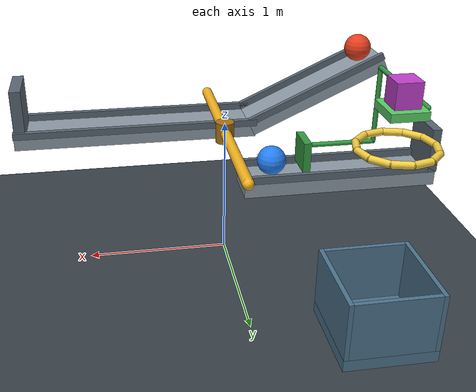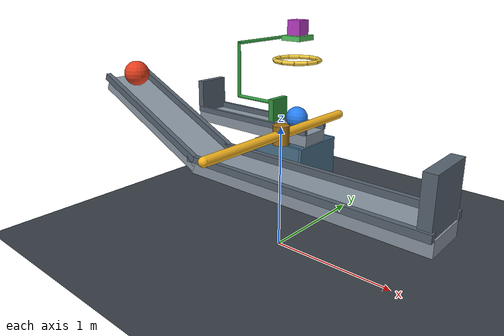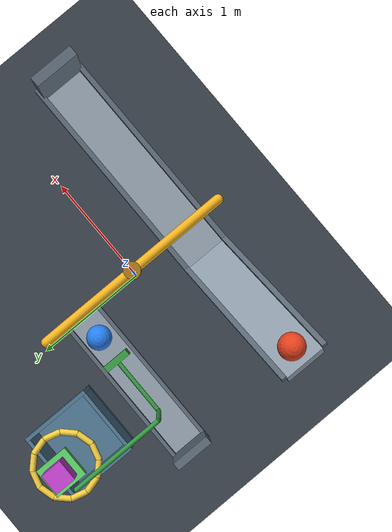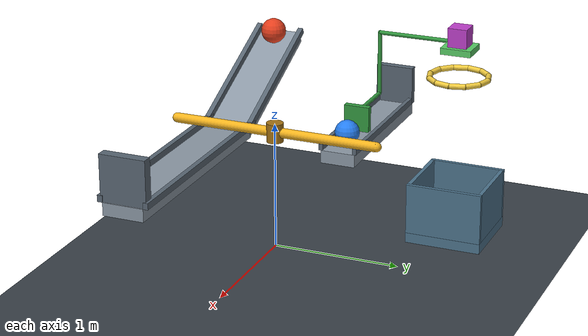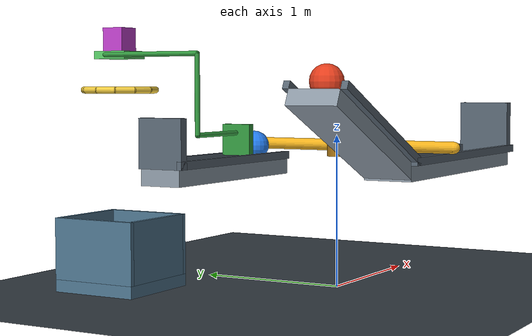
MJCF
<mujoco model="ramp_rotor_latch_drop">
  <compiler angle="degree"/>
  <option timestep="0.002" gravity="0 0 -9.81" integrator="implicitfast" solver="Newton" iterations="100" tolerance="1e-9"/>
  <size nconmax="300" njmax="1000"/>

  <visual>
    <global azimuth="135" elevation="-25"/>
    <headlight ambient="0.35 0.35 0.35" diffuse="0.7 0.7 0.7"/>
  </visual>

  <worldbody>
    <light name="overhead" pos="-1 0 5" dir="0 0 -1"/>
    <camera name="overview" pos="3 -5 3.8" xyaxes="0.857 0.514 0 -0.244 0.407 0.880"/>
    <geom name="floor" type="plane" pos="0 0 0" size="5 5 0.1" condim="6" friction="0.8 0.02 0.01" rgba="0.22 0.25 0.28 1"/>

    <!-- The initial contact point is exactly one metre uphill from the ramp's lower lip. -->
    <body name="ramp" pos="0 0 0">
      <geom name="ramp_slope" type="box" pos="-0.778663 -0.5 1.031351" euler="0 25 0" size="0.56 0.16 0.05" friction="0.7 0.01 0.004" condim="6" rgba="0.55 0.60 0.65 1"/>
      <geom name="ramp_slope_rail_left" type="box" pos="-0.746967 -0.68 1.099324" euler="0 25 0" size="0.56 0.02 0.025" friction="0.5 0.01 0.004" condim="6" rgba="0.35 0.40 0.45 1"/>
      <geom name="ramp_slope_rail_right" type="box" pos="-0.746967 -0.32 1.099324" euler="0 25 0" size="0.56 0.02 0.025" friction="0.5 0.01 0.004" condim="6" rgba="0.35 0.40 0.45 1"/>

      <geom name="ramp_ball1_runway" type="box" pos="0.60 -0.5 0.79" size="0.90 0.16 0.05" friction="0.7 0.01 0.007" condim="6" rgba="0.55 0.60 0.65 1"/>
      <geom name="ramp_ball1_rail_left" type="box" pos="0.60 -0.68 0.865" size="0.90 0.02 0.025" friction="0.5 0.01 0.004" condim="6" rgba="0.35 0.40 0.45 1"/>
      <geom name="ramp_ball1_rail_right" type="box" pos="0.60 -0.32 0.865" size="0.90 0.02 0.025" friction="0.5 0.01 0.004" condim="6" rgba="0.35 0.40 0.45 1"/>
      <geom name="ramp_ball1_stop" type="box" pos="1.45 -0.5 1.02" size="0.04 0.18 0.18" friction="0.7 0.01 0.007" condim="6" solref="0.015 1" rgba="0.35 0.40 0.45 1"/>

      <geom name="ramp_ball2_runway" type="box" pos="-0.66 0.5 0.79" size="0.64 0.135 0.05" friction="0.5 0.01 0.004" condim="6" rgba="0.55 0.60 0.65 1"/>
      <geom name="ramp_ball2_rail_left" type="box" pos="-0.66 0.365 0.865" size="0.64 0.015 0.025" friction="0.4 0.01 0.003" condim="6" rgba="0.35 0.40 0.45 1"/>
      <geom name="ramp_ball2_rail_right" type="box" pos="-0.66 0.635 0.865" size="0.64 0.015 0.025" friction="0.4 0.01 0.003" condim="6" rgba="0.35 0.40 0.45 1"/>
      <geom name="ramp_ball2_stop" type="box" pos="-1.27 0.5 0.99" size="0.03 0.15 0.15" friction="0.6 0.01 0.004" condim="6" solref="0.015 1" rgba="0.35 0.40 0.45 1"/>
    </body>

    <body name="ball1" pos="-1.114046 -0.5 1.353249">
      <freejoint name="ball1_free"/>
      <geom name="ball1_sphere" type="sphere" size="0.10" mass="2.0" friction="0.7 0.01 0.007" condim="6" solref="0.012 1" rgba="0.9 0.25 0.12 1"/>
    </body>

    <!-- The lower arm is driven toward +x; the upper arm drives ball2 toward -x. -->
    <body name="rotor" pos="0 0 0.94">
      <joint name="rotor_hinge" type="hinge" axis="0 0 1" limited="true" range="0 72" damping="0.03" frictionloss="0.008" armature="0.002"/>
      <geom name="rotor_arm" type="capsule" fromto="0 -0.82 0 0 0.82 0" size="0.038" mass="0.38" friction="0.3 0.005 0.001" condim="6" solref="0.012 1" rgba="0.95 0.70 0.12 1"/>
      <geom name="rotor_hub" type="cylinder" size="0.065 0.075" mass="0.06" friction="0.3 0.005 0.001" condim="6" rgba="0.65 0.45 0.08 1"/>
    </body>

    <body name="ball2" pos="-0.22 0.5 0.935">
      <freejoint name="ball2_free"/>
      <geom name="ball2_sphere" type="sphere" size="0.095" mass="0.50" friction="0.5 0.01 0.004" condim="6" solref="0.012 1" rgba="0.15 0.50 0.95 1"/>
    </body>

    <!-- The low striker and elevated support plate form one sliding latch. -->
    <body name="latch" pos="-0.75 1.2 1.525">
      <joint name="latch_slide" type="slide" axis="1 0 0" limited="true" range="-0.40 0" damping="0.10" frictionloss="0.03"/>
      <geom name="latch_support" type="box" pos="0 0 0" size="0.11 0.12 0.025" mass="0.06" friction="0.02 0.001 0.0001" condim="3" solref="0.012 1" rgba="0.35 0.80 0.40 1"/>
      <geom name="latch_striker" type="box" pos="0.32 -0.7 -0.545" size="0.025 0.10 0.10" mass="0.08" friction="0.4 0.005 0.001" condim="6" solref="0.012 1" rgba="0.20 0.60 0.25 1"/>
      <geom name="latch_lower_link" type="capsule" fromto="0.32 -0.7 -0.50 -0.15 -0.7 -0.50" size="0.016" mass="0.04" friction="0.3 0.005 0.001" rgba="0.20 0.60 0.25 1"/>
      <geom name="latch_upright" type="capsule" fromto="-0.15 -0.7 -0.50 -0.15 -0.7 0" size="0.016" mass="0.04" friction="0.3 0.005 0.001" rgba="0.20 0.60 0.25 1"/>
      <geom name="latch_upper_link" type="capsule" fromto="-0.15 -0.7 0 -0.15 0 0" size="0.016" mass="0.05" friction="0.02 0.001 0.0001" rgba="0.20 0.60 0.25 1"/>
    </body>

    <body name="block" pos="-0.75 1.2 1.626">
      <freejoint name="block_free"/>
      <geom name="block_payload" type="box" size="0.075 0.075 0.075" mass="0.60" friction="0.02 0.001 0.0001" condim="3" solref="0.012 1" rgba="0.75 0.25 0.80 1"/>
    </body>

    <!-- A fixed, twelve-segment circular hoop with a clear central opening. -->
    <body name="ring" pos="-0.75 1.2 1.30">
      <geom name="ring_segment_00" type="capsule" fromto="0.23 0 0 0.199186 0.115 0" size="0.022" friction="0.4 0.005 0.001" rgba="0.95 0.80 0.25 1"/>
      <geom name="ring_segment_01" type="capsule" fromto="0.199186 0.115 0 0.115 0.199186 0" size="0.022" friction="0.4 0.005 0.001" rgba="0.95 0.80 0.25 1"/>
      <geom name="ring_segment_02" type="capsule" fromto="0.115 0.199186 0 0 0.23 0" size="0.022" friction="0.4 0.005 0.001" rgba="0.95 0.80 0.25 1"/>
      <geom name="ring_segment_03" type="capsule" fromto="0 0.23 0 -0.115 0.199186 0" size="0.022" friction="0.4 0.005 0.001" rgba="0.95 0.80 0.25 1"/>
      <geom name="ring_segment_04" type="capsule" fromto="-0.115 0.199186 0 -0.199186 0.115 0" size="0.022" friction="0.4 0.005 0.001" rgba="0.95 0.80 0.25 1"/>
      <geom name="ring_segment_05" type="capsule" fromto="-0.199186 0.115 0 -0.23 0 0" size="0.022" friction="0.4 0.005 0.001" rgba="0.95 0.80 0.25 1"/>
      <geom name="ring_segment_06" type="capsule" fromto="-0.23 0 0 -0.199186 -0.115 0" size="0.022" friction="0.4 0.005 0.001" rgba="0.95 0.80 0.25 1"/>
      <geom name="ring_segment_07" type="capsule" fromto="-0.199186 -0.115 0 -0.115 -0.199186 0" size="0.022" friction="0.4 0.005 0.001" rgba="0.95 0.80 0.25 1"/>
      <geom name="ring_segment_08" type="capsule" fromto="-0.115 -0.199186 0 0 -0.23 0" size="0.022" friction="0.4 0.005 0.001" rgba="0.95 0.80 0.25 1"/>
      <geom name="ring_segment_09" type="capsule" fromto="0 -0.23 0 0.115 -0.199186 0" size="0.022" friction="0.4 0.005 0.001" rgba="0.95 0.80 0.25 1"/>
      <geom name="ring_segment_10" type="capsule" fromto="0.115 -0.199186 0 0.199186 -0.115 0" size="0.022" friction="0.4 0.005 0.001" rgba="0.95 0.80 0.25 1"/>
      <geom name="ring_segment_11" type="capsule" fromto="0.199186 -0.115 0 0.23 0 0" size="0.022" friction="0.4 0.005 0.001" rgba="0.95 0.80 0.25 1"/>
    </body>

    <body name="box" pos="-0.75 1.2 0">
      <geom name="box_bottom" type="box" pos="0 0 0.04" size="0.30 0.30 0.04" friction="0.8 0.02 0.008" condim="6" solref="0.02 1" rgba="0.30 0.45 0.55 1"/>
      <geom name="box_wall_left" type="box" pos="-0.285 0 0.28" size="0.015 0.30 0.20" friction="0.8 0.02 0.008" condim="6" solref="0.02 1" rgba="0.30 0.45 0.55 1"/>
      <geom name="box_wall_right" type="box" pos="0.285 0 0.28" size="0.015 0.30 0.20" friction="0.8 0.02 0.008" condim="6" solref="0.02 1" rgba="0.30 0.45 0.55 1"/>
      <geom name="box_wall_front" type="box" pos="0 -0.285 0.28" size="0.27 0.015 0.20" friction="0.8 0.02 0.008" condim="6" solref="0.02 1" rgba="0.30 0.45 0.55 1"/>
      <geom name="box_wall_back" type="box" pos="0 0.285 0.28" size="0.27 0.015 0.20" friction="0.8 0.02 0.008" condim="6" solref="0.02 1" rgba="0.30 0.45 0.55 1"/>
    </body>
  </worldbody>

  <keyframe>
    <key name="start" qpos="-1.114046 -0.5 1.353249 1 0 0 0 0 -0.22 0.5 0.935 1 0 0 0 0 -0.75 1.2 1.626 1 0 0 0"/>
  </keyframe>
</mujoco>
